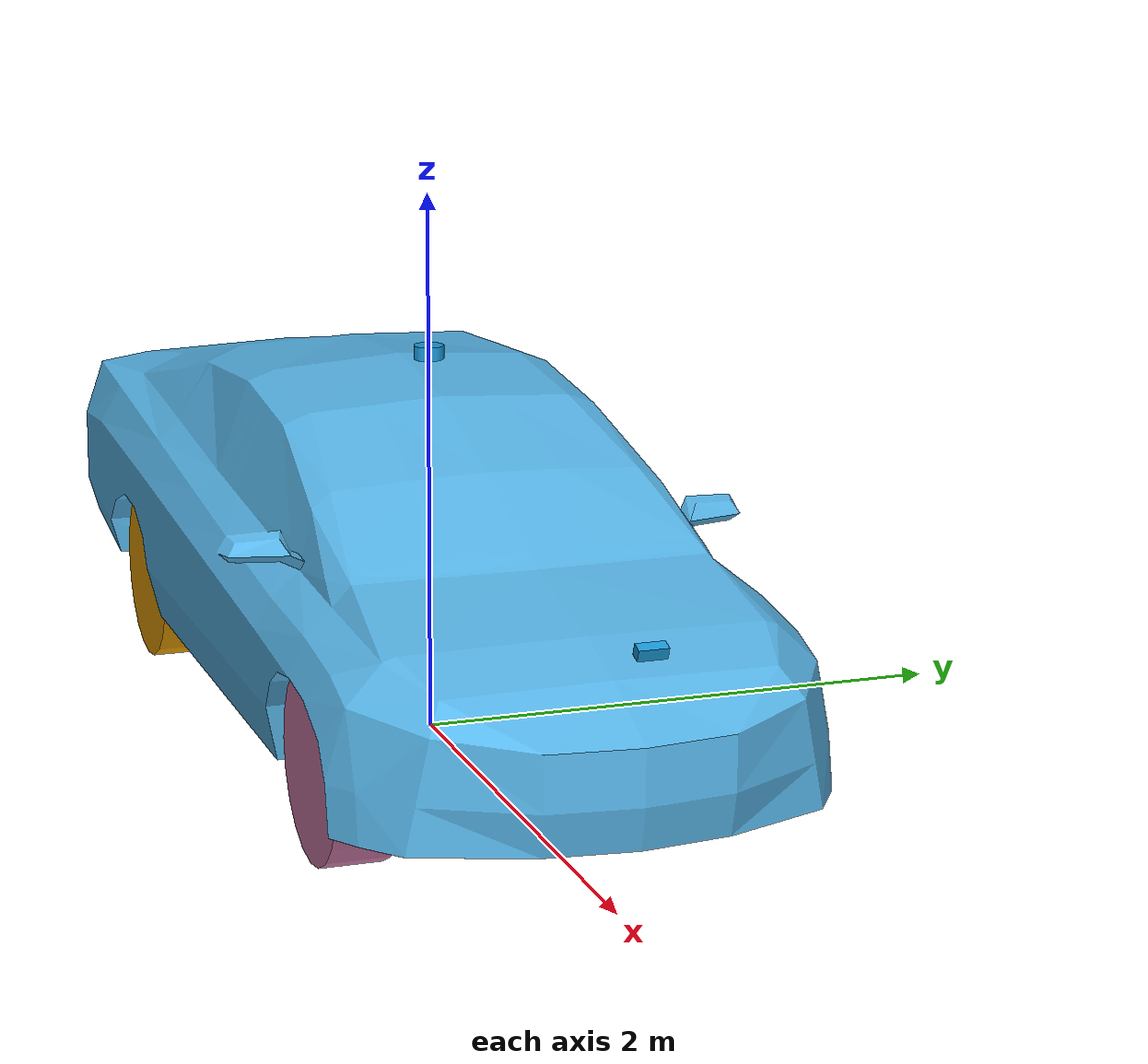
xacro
<?xml version="1.0"?>
<robot name="valet_car" xmlns:xacro="http://www.ros.org/wiki/xacro">

  <!-- true 면 Gazebo 센서 / gz_ros2_control 플러그인을 포함한다.
       false 면 순수 URDF (RViz 로 모델만 확인할 때). -->
  <xacro:arg name="sim" default="true"/>
  <!-- 라이다를 뺀 채로 띄우고 싶을 때 (렌더링 없이 물리/제어만 검증). -->
  <xacro:arg name="lidar" default="true"/>
  <!-- mesh:=false 면 외형이 박스 조합으로 나온다 (메시 없이 확인할 때). -->
  <!-- 전방 RGBD 카메라. 렌더링 부하가 커서 끌 수 있게 둔다. -->
  <xacro:arg name="camera" default="true"/>
  <xacro:arg name="mesh" default="true"/>
  <xacro:arg name="controllers_file"
             default="$(find valet_robot)/config/controllers.yaml"/>

  <xacro:include filename="common.xacro"/>
  <xacro:include filename="body.xacro"/>
  <xacro:include filename="wheels.xacro"/>

  <!-- ===================== 1. 베이스 ===================== -->
  <link name="base_footprint"/>

  <joint name="base_joint" type="fixed">
    <parent link="base_footprint"/>
    <child  link="base_link"/>
    <origin xyz="0 0 ${base_z}" rpy="0 0 0"/>
  </joint>

  <link name="base_link">
    <xacro:car_body use_mesh="$(arg mesh)"/>

    <!-- 관성: 차체 전체를 하나의 등가 박스로 근사. 무게중심은 실차처럼 낮게. -->
    <xacro:box_inertia m="${base_mass}" x="4.50" y="1.70" z="0.90">
      <origin xyz="-0.05 0 0.22" rpy="0 0 0"/>
    </xacro:box_inertia>
  </link>

  <!-- 후륜축 참조 프레임. ackermann_steering_controller 가 발행하는
       오도메트리(자전거 모델)의 실제 원점. TF 는 여기서 발행하지 않는다. -->
  <link name="base_rear_axle"/>
  <joint name="base_rear_axle_joint" type="fixed">
    <parent link="base_link"/>
    <child  link="base_rear_axle"/>
    <origin xyz="${-wheelbase/2.0} 0 0" rpy="0 0 0"/>
  </joint>

  <!-- ===================== 2. 바퀴 ===================== -->
  <xacro:front_corner side="left"  reflect="1"/>
  <xacro:front_corner side="right" reflect="-1"/>
  <xacro:rear_corner  side="left"  reflect="1"/>
  <xacro:rear_corner  side="right" reflect="-1"/>

  <!-- ===================== 3. 센서 프레임 ===================== -->
  <!-- 2D 라이다 — 지붕 위 절대 높이 1.42 m (근거는 common.xacro 3장) -->
  <xacro:if value="$(arg lidar)">
    <link name="lidar_link">
      <visual>
        <origin xyz="0 0 0" rpy="0 0 0"/>
        <geometry><cylinder radius="0.055" length="0.05"/></geometry>
        <material name="valet_sensor"/>
      </visual>
      <inertial>
        <origin xyz="0 0 0" rpy="0 0 0"/>
        <mass value="1.2"/>
        <inertia ixx="0.002" ixy="0" ixz="0" iyy="0.002" iyz="0" izz="0.002"/>
      </inertial>
    </link>
    <joint name="lidar_joint" type="fixed">
      <parent link="base_link"/>
      <child  link="lidar_link"/>
      <origin xyz="0 0 ${lidar_z}" rpy="0 0 0"/>
    </joint>
  </xacro:if>

  <!-- 전방 하향 RGBD (치수 근거는 common.xacro) -->
  <xacro:if value="$(arg camera)">
    <link name="camera_link">
      <visual>
        <origin xyz="0 0 0" rpy="0 0 0"/>
        <geometry><box size="0.04 0.10 0.04"/></geometry>
        <material name="valet_sensor"/>
      </visual>
      <inertial>
        <origin xyz="0 0 0" rpy="0 0 0"/>
        <mass value="0.15"/>
        <inertia ixx="1e-4" ixy="0" ixz="0" iyy="1e-4" iyz="0" izz="1e-4"/>
      </inertial>
    </link>
    <joint name="camera_joint" type="fixed">
      <parent link="base_link"/>
      <child  link="camera_link"/>
      <origin xyz="${cam_x} 0 ${cam_z}" rpy="0 ${cam_pitch} 0"/>
    </joint>

    <!-- ! 광학 프레임을 따로 둔다. ROS 의 카메라 규약은 z 가 앞,
         x 가 오른쪽, y 가 아래인데 URDF 링크는 x 가 앞이다. 이걸 안 맞추면
         포인트클라우드가 90 도 누워서 코스트맵에 엉뚱하게 찍힌다. -->
    <link name="camera_optical_link"/>
    <joint name="camera_optical_joint" type="fixed">
      <parent link="camera_link"/>
      <child  link="camera_optical_link"/>
      <origin xyz="0 0 0" rpy="${-pi/2} 0 ${-pi/2}"/>
    </joint>
  </xacro:if>

  <link name="imu_link">
    <inertial>
      <origin xyz="0 0 0" rpy="0 0 0"/>
      <mass value="0.05"/>
      <inertia ixx="1e-5" ixy="0" ixz="0" iyy="1e-5" iyz="0" izz="1e-5"/>
    </inertial>
  </link>
  <joint name="imu_joint" type="fixed">
    <parent link="base_link"/>
    <child  link="imu_link"/>
    <origin xyz="0 0 ${imu_z}" rpy="0 0 0"/>
  </joint>

  <!-- ===================== 4. 시뮬레이션 ===================== -->
  <xacro:if value="$(arg sim)">
    <xacro:include filename="valet_car.ros2_control.xacro"/>
    <xacro:include filename="sensors.gazebo.xacro"/>
    <xacro:valet_ros2_control controllers_file="$(arg controllers_file)"/>
    <xacro:valet_gazebo lidar="$(arg lidar)" camera="$(arg camera)"/>
  </xacro:if>

</robot>

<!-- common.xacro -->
<robot xmlns:xacro="http://www.ros.org/wiki/xacro">

  <!-- ===== 1. 차량 기구학 (맵 패키지와 반드시 일치) ===================== -->
  <xacro:property name="body_length"  value="4.50"/>   <!-- 전장 -->
  <xacro:property name="body_width"   value="1.90"/>   <!-- 전폭 -->
  <xacro:property name="wheelbase"    value="2.50"/>   <!-- 축거 -->
  <xacro:property name="wheel_radius" value="0.33"/>
  <xacro:property name="wheel_width"  value="0.22"/>
  <!-- max_steer 는 "자전거 모델"(가상 중앙륜)의 최대 조향각이다.
       최소회전반경을 정의하는 값이고 Nav2 / twist_to_ackermann 이 쓰는 값. -->
  <xacro:property name="max_steer"    value="0.6108652"/> <!-- 35 deg -->
  <xacro:property name="track"        value="1.38"/>

  <!-- 최소회전반경(후륜축 중심) = wheelbase / tan(max_steer) = 3.5704 m
       nav2_ackermann.yaml 의 minimum_turning_radius / min_turning_r 과 동일해야 한다. -->
  <xacro:property name="min_turn_radius" value="${wheelbase/tan(max_steer)}"/>

  <xacro:property name="steer_limit"
                  value="${1.05*atan(wheelbase/(min_turn_radius - track/2))}"/>

  <!-- ===== 2. 차체 형상 (실차 세단 프로파일) ======================== -->
  <!-- base_link 는 "차체 중심"(앞뒤 오버행 각 1.00 m). 후륜축이 아니다.
       근거: nav2_ackermann.yaml footprint 가 [+-2.30, +-1.00] 대칭이고
             parking_spots.yaml 의 goal_pose 가 주차면 중심이기 때문. -->
  <xacro:property name="base_z"       value="${wheel_radius}"/>  <!-- 지면->base_link -->

  <!-- 하부: 바퀴가 들어갈 자리를 비워 휠아치를 만든다.
       플로어팬은 축 사이(x +-0.92)만 전폭으로 두고, 바퀴 x 구간은 비운다.
       최대조향(43도) 시 앞바퀴 x 는 0.934~1.566 이므로 6 cm 이상 여유. -->
  <xacro:property name="pan_len"      value="1.84"/>
  <xacro:property name="pan_w"        value="${body_width}"/>
  <xacro:property name="pan_h"        value="0.42"/>
  <xacro:property name="pan_cz"       value="0.12"/>   <!-- 절대 0.45 -->

  <xacro:property name="fascia_len"   value="0.62"/>   <!-- 범퍼 블록 -->
  <xacro:property name="fascia_w"     value="1.86"/>
  <xacro:property name="fascia_cx"    value="1.94"/>

  <!-- 벨트라인: 전장/전폭을 정의하는 형상. 바퀴 상단(0.66)보다 0.02 위.
       앞머리를 낮추려고 캐빈/후방(1.00)과 보닛부(0.94)를 나눠 놓았다. -->
  <xacro:property name="beltr_len"    value="3.15"/>
  <xacro:property name="beltr_cx"     value="-0.675"/>
  <xacro:property name="beltr_h"      value="0.32"/>
  <xacro:property name="beltr_cz"     value="0.51"/>   <!-- 절대 0.68~1.00 -->

  <xacro:property name="beltf_len"    value="1.35"/>
  <xacro:property name="beltf_cx"     value="1.575"/>
  <xacro:property name="beltf_h"      value="0.26"/>
  <xacro:property name="beltf_cz"     value="0.48"/>   <!-- 절대 0.68~0.94 -->

  <!-- 보닛: 카울(0.96)에서 노즈(0.90)로 내려가는 경사판 -->
  <xacro:property name="hood_len"     value="1.36"/>
  <xacro:property name="hood_cx"      value="1.56"/>
  <xacro:property name="hood_cz"      value="0.60"/>   <!-- 절대 0.93 -->
  <xacro:property name="hood_pitch"   value="0.0441"/>

  <xacro:property name="trunk_len"    value="1.02"/>
  <xacro:property name="trunk_cx"     value="-1.73"/>
  <xacro:property name="lid_w"        value="1.80"/>
  <xacro:property name="lid_h"        value="0.08"/>
  <xacro:property name="lid_cz"       value="0.69"/>   <!-- 절대 0.98~1.06 -->

  <xacro:property name="cabin_len"    value="1.25"/>
  <xacro:property name="cabin_w"      value="1.72"/>
  <xacro:property name="cabin_h"      value="0.28"/>
  <xacro:property name="cabin_cx"     value="-0.325"/>
  <xacro:property name="cabin_cz"     value="0.83"/>   <!-- 절대 1.02~1.30 -->

  <xacro:property name="roof_cz"      value="0.99"/>   <!-- 절대 1.30~1.34 -->
  <xacro:property name="pod_cz"       value="1.035"/>  <!-- 절대 1.34~1.39 -->

  <xacro:property name="cam_x"     value="2.28"/>
  <xacro:property name="cam_z"     value="0.62"/>   <!-- 절대 0.95 -->
  <xacro:property name="cam_pitch" value="0.3491"/> <!-- 하향 20 deg -->

  <xacro:property name="lidar_z"      value="1.09"/>   <!-- 절대 1.42 -->
  <xacro:property name="imu_z"        value="0.05"/>

  <!-- ===== 4. 질량 ===================================================== -->
  <xacro:property name="base_mass"    value="800.0"/>
  <xacro:property name="wheel_mass"   value="25.0"/>
  <xacro:property name="knuckle_mass" value="6.0"/>

  <!-- ===== 5. 속도 제약 (nav2_ackermann.yaml 과 동일) ================== -->
  <xacro:property name="max_speed_fwd" value="1.60"/>
  <xacro:property name="max_speed_rev" value="0.60"/>

  <!-- ===== 6. 관성 매크로 ============================================== -->
  <xacro:macro name="box_inertia" params="m x y z *origin">
    <inertial>
      <xacro:insert_block name="origin"/>
      <mass value="${m}"/>
      <inertia ixx="${m*(y*y+z*z)/12.0}" ixy="0.0" ixz="0.0"
               iyy="${m*(x*x+z*z)/12.0}" iyz="0.0"
               izz="${m*(x*x+y*y)/12.0}"/>
    </inertial>
  </xacro:macro>

  <!-- 회전축이 y 인 원통(바퀴) -->
  <xacro:macro name="wheel_inertia" params="m r h">
    <inertial>
      <origin xyz="0 0 0" rpy="0 0 0"/>
      <mass value="${m}"/>
      <inertia ixx="${m*(3.0*r*r+h*h)/12.0}" ixy="0.0" ixz="0.0"
               iyy="${m*r*r/2.0}"            iyz="0.0"
               izz="${m*(3.0*r*r+h*h)/12.0}"/>
    </inertial>
  </xacro:macro>

  <!-- ===== 7. 재질 ===================================================== -->
  <material name="valet_body">   <color rgba="0.72 0.16 0.14 1.0"/></material>  <!-- 차체색 -->
  <material name="valet_glass">  <color rgba="0.10 0.13 0.17 0.85"/></material> <!-- 유리 -->
  <material name="valet_dark">   <color rgba="0.07 0.07 0.08 1.0"/></material>  <!-- 그릴/미러 -->
  <material name="valet_rubber"> <color rgba="0.06 0.06 0.07 1.0"/></material>  <!-- 타이어 -->
  <material name="valet_rim">    <color rgba="0.72 0.74 0.78 1.0"/></material>
  <material name="valet_metal">  <color rgba="0.45 0.47 0.50 1.0"/></material>  <!-- 센서 포드 -->
  <material name="valet_sensor"> <color rgba="0.10 0.60 0.85 1.0"/></material>  <!-- 라이다 -->
  <material name="valet_light">  <color rgba="0.98 0.96 0.82 1.0"/></material>  <!-- 헤드램프 -->
  <material name="valet_tail">   <color rgba="0.85 0.10 0.10 1.0"/></material>  <!-- 테일램프 -->

</robot>

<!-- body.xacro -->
<robot xmlns:xacro="http://www.ros.org/wiki/xacro">

  <!-- 박스 하나. visual 은 mesh 모드에서 끌 수 있다 -->
  <xacro:macro name="body_box" params="name x y z sx sy sz material collision:=true visual:=true">
    <xacro:if value="${visual}">
      <visual name="${name}_vis">
        <origin xyz="${x} ${y} ${z}" rpy="0 0 0"/>
        <geometry><box size="${sx} ${sy} ${sz}"/></geometry>
        <material name="${material}"/>
      </visual>
    </xacro:if>
    <xacro:if value="${collision}">
      <collision name="${name}_col">
        <origin xyz="${x} ${y} ${z}" rpy="0 0 0"/>
        <geometry><box size="${sx} ${sy} ${sz}"/></geometry>
      </collision>
    </xacro:if>
  </xacro:macro>

  <!-- 기울어진 판 (앞유리 / 뒷유리). 충돌 없음 -->
  <xacro:macro name="glass_panel" params="name x z plen pitch width:=1.66">
    <visual name="${name}_vis">
      <origin xyz="${x} 0 ${z}" rpy="0 ${pitch} 0"/>
      <geometry><box size="${plen} ${width} 0.05"/></geometry>
      <material name="valet_glass"/>
    </visual>
  </xacro:macro>

  <!-- 좌우 대칭 장식 (등화 / 미러). 충돌 없음 -->
  <xacro:macro name="pair_box" params="name x z sx sy sz material y_off">
    <visual name="${name}_l_vis">
      <origin xyz="${x} ${y_off} ${z}" rpy="0 0 0"/>
      <geometry><box size="${sx} ${sy} ${sz}"/></geometry>
      <material name="${material}"/>
    </visual>
    <visual name="${name}_r_vis">
      <origin xyz="${x} ${-y_off} ${z}" rpy="0 0 0"/>
      <geometry><box size="${sx} ${sy} ${sz}"/></geometry>
      <material name="${material}"/>
    </visual>
  </xacro:macro>

  <!-- ===================== 차체 전체 ===================== -->
  <xacro:macro name="car_body" params="use_mesh:=true">

    <!-- === 외형: 메시 (실차 Prius 를 우리 제원에 맞춰 변형) === -->
    <xacro:if value="${use_mesh}">
      <visual name="body_mesh_vis">
        <origin xyz="0 0 ${-base_z}" rpy="0 0 0"/>
        <geometry>
          <mesh filename="package://valet_robot/meshes/body.obj"/>
        </geometry>
      </visual>
    </xacro:if>

    <!-- 하부: 플로어팬(축 사이만) + 앞뒤 범퍼. 사이 빈 공간이 휠아치 -->
    <xacro:body_box name="floor_pan" x="0" y="0" z="${pan_cz}"
                    sx="${pan_len}" sy="${pan_w}" sz="${pan_h}"
                    material="valet_body" visual="${not use_mesh}"/>
    <xacro:body_box name="bumper_f" x="${fascia_cx}" y="0" z="${pan_cz}"
                    sx="${fascia_len}" sy="${fascia_w}" sz="${pan_h}"
                    material="valet_body" visual="${not use_mesh}"/>
    <xacro:body_box name="bumper_r" x="${-fascia_cx}" y="0" z="${pan_cz}"
                    sx="${fascia_len}" sy="${fascia_w}" sz="${pan_h}"
                    material="valet_body" visual="${not use_mesh}"/>

    <!-- 벨트라인. 캐빈/후방(높음) + 보닛부(낮음) 로 나눠 앞머리를 낮춘다.
         둘을 합쳐 전장 4.50 x 전폭 1.90 이 나온다. -->
    <xacro:body_box name="belt_rear" x="${beltr_cx}" y="0" z="${beltr_cz}"
                    sx="${beltr_len}" sy="${body_width}" sz="${beltr_h}"
                    material="valet_body" visual="${not use_mesh}"/>
    <xacro:body_box name="belt_front" x="${beltf_cx}" y="0" z="${beltf_cz}"
                    sx="${beltf_len}" sy="${body_width}" sz="${beltf_h}"
                    material="valet_body" visual="${not use_mesh}"/>

    <!-- 보닛(경사판) / 트렁크 리드 -->
    <xacro:unless value="${use_mesh}">
      <visual name="hood_vis">
        <origin xyz="${hood_cx} 0 ${hood_cz}" rpy="0 ${hood_pitch} 0"/>
        <geometry><box size="${hood_len} ${lid_w} ${lid_h}"/></geometry>
        <material name="valet_body"/>
      </visual>
    </xacro:unless>
    <xacro:body_box name="trunk" x="${trunk_cx}" y="0" z="${lid_cz}"
                    sx="${trunk_len}" sy="${lid_w}" sz="${lid_h}"
                    material="valet_body" collision="false" visual="${not use_mesh}"/>

    <!-- 캐빈(그린하우스) + 루프 -->
    <xacro:body_box name="cabin" x="${cabin_cx}" y="0" z="${cabin_cz}"
                    sx="${cabin_len}" sy="${cabin_w}" sz="${cabin_h}"
                    material="valet_glass" visual="${not use_mesh}"/>
    <xacro:body_box name="roof" x="${cabin_cx}" y="0" z="${roof_cz}"
                    sx="1.30" sy="1.68" sz="0.04"
                    material="valet_body" collision="false" visual="${not use_mesh}"/>

    <xacro:unless value="${use_mesh}">
      <!-- 앞유리 / 뒷유리 (기울어진 판) -->
      <xacro:glass_panel name="windshield" x="0.60"  z="0.81" plen="0.68" pitch="0.491"/>
      <xacro:glass_panel name="rearglass"  x="-1.085" z="0.82" plen="0.41" pitch="-0.838"/>

      <!-- 센서 포드 (지붕 위) -->
      <visual name="sensor_pod_vis">
        <origin xyz="0 0 ${pod_cz}" rpy="0 0 0"/>
        <geometry><cylinder radius="0.10" length="0.05"/></geometry>
        <material name="valet_metal"/>
      </visual>

      <!-- 등화 / 그릴 / 사이드미러 -->
      <xacro:pair_box name="headlight" x="2.245" z="0.49"
                      sx="0.05" sy="0.34" sz="0.14" material="valet_light" y_off="0.60"/>
      <xacro:pair_box name="taillight" x="-2.245" z="0.55"
                      sx="0.05" sy="0.30" sz="0.12" material="valet_tail" y_off="0.66"/>
      <xacro:body_box name="grille" x="2.245" y="0" z="0.29"
                      sx="0.05" sy="1.00" sz="0.16"
                      material="valet_dark" collision="false" visual="${not use_mesh}"/>
      <!-- 미러는 전폭 밖으로 나가므로 충돌 없음 (실차도 그렇다).
           바깥끝 1.025 m — Nav2 footprint 반폭 1.00 + padding 0.03 안쪽 -->
      <xacro:pair_box name="mirror" x="0.75" z="0.73"
                      sx="0.09" sy="0.11" sz="0.07" material="valet_dark" y_off="0.97"/>
    </xacro:unless>

  </xacro:macro>
</robot>

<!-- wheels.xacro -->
<robot xmlns:xacro="http://www.ros.org/wiki/xacro">

  <!-- 바퀴 링크 공통부 -->
  <xacro:macro name="wheel_link" params="name">
    <link name="${name}">
      <!-- 외형: 메시 (실차 타이어+휠). use_mesh 가 false 면 원통으로 대체 -->
      <xacro:if value="$(arg mesh)">
        <visual>
          <origin xyz="0 0 0" rpy="0 0 0"/>
          <geometry>
            <mesh filename="package://valet_robot/meshes/wheel.obj"/>
          </geometry>
        </visual>
      </xacro:if>
      <xacro:unless value="$(arg mesh)">
        <visual>
          <origin xyz="0 0 0" rpy="${pi/2} 0 0"/>
          <geometry><cylinder radius="${wheel_radius}" length="${wheel_width}"/></geometry>
          <material name="valet_rubber"/>
        </visual>
        <visual>
          <origin xyz="0 0 0" rpy="${pi/2} 0 0"/>
          <geometry><cylinder radius="${wheel_radius*0.62}" length="${wheel_width*1.04}"/></geometry>
          <material name="valet_rim"/>
        </visual>
      </xacro:unless>
      <collision>
        <origin xyz="0 0 0" rpy="${pi/2} 0 0"/>
        <geometry><cylinder radius="${wheel_radius}" length="${wheel_width}"/></geometry>
      </collision>
      <xacro:wheel_inertia m="${wheel_mass}" r="${wheel_radius}" h="${wheel_width}"/>
    </link>
  </xacro:macro>

  <!-- ================ 앞바퀴(조향) ================ -->
  <!-- side: left|right,  reflect: +1(left) / -1(right) -->
  <xacro:macro name="front_corner" params="side reflect">

    <!-- 조향 너클: 충돌 형상 없음(데크/섀시와의 자기충돌 회피) -->
    <link name="front_${side}_steer_link">
      <xacro:unless value="$(arg mesh)">
        <visual>
          <origin xyz="0 0 0" rpy="0 0 0"/>
          <geometry><box size="0.12 0.09 0.24"/></geometry>
          <material name="valet_dark"/>
        </visual>
      </xacro:unless>
      <xacro:box_inertia m="${knuckle_mass}" x="0.14" y="0.10" z="0.26">
        <origin xyz="0 0 0" rpy="0 0 0"/>
      </xacro:box_inertia>
    </link>

    <joint name="front_${side}_steer_joint" type="revolute">
      <parent link="base_link"/>
      <child  link="front_${side}_steer_link"/>
      <origin xyz="${wheelbase/2.0} ${reflect*track/2.0} 0" rpy="0 0 0"/>
      <axis xyz="0 0 1"/>
      <limit lower="${-steer_limit}" upper="${steer_limit}" effort="6000.0" velocity="3.0"/>
      <dynamics damping="2.0" friction="1.0"/>
    </joint>

    <xacro:wheel_link name="front_${side}_wheel_link"/>

    <!-- 앞바퀴는 비구동(자유 회전). 상태만 ros2_control 에 노출한다. -->
    <joint name="front_${side}_wheel_joint" type="continuous">
      <parent link="front_${side}_steer_link"/>
      <child  link="front_${side}_wheel_link"/>
      <origin xyz="0 0 0" rpy="0 0 0"/>
      <axis xyz="0 1 0"/>
      <limit effort="0.0" velocity="60.0"/>
      <dynamics damping="0.02" friction="0.05"/>
    </joint>
  </xacro:macro>

  <!-- ================ 뒷바퀴(구동) ================ -->
  <xacro:macro name="rear_corner" params="side reflect">
    <xacro:wheel_link name="rear_${side}_wheel_link"/>

    <joint name="rear_${side}_wheel_joint" type="continuous">
      <parent link="base_link"/>
      <child  link="rear_${side}_wheel_link"/>
      <origin xyz="${-wheelbase/2.0} ${reflect*track/2.0} 0" rpy="0 0 0"/>
      <axis xyz="0 1 0"/>
      <limit effort="8000.0" velocity="30.0"/>
      <dynamics damping="0.05" friction="0.10"/>
    </joint>
  </xacro:macro>

</robot>
